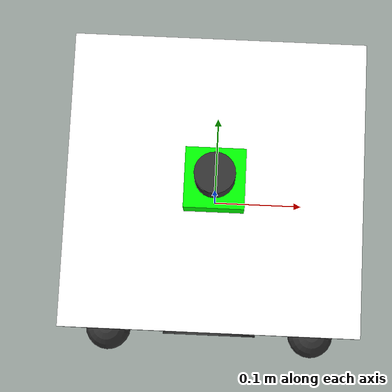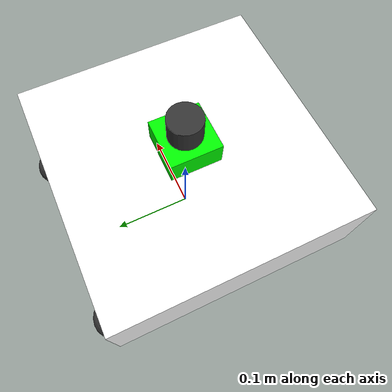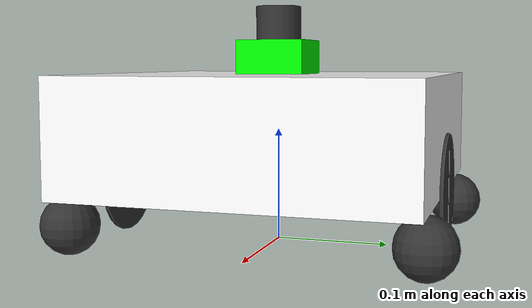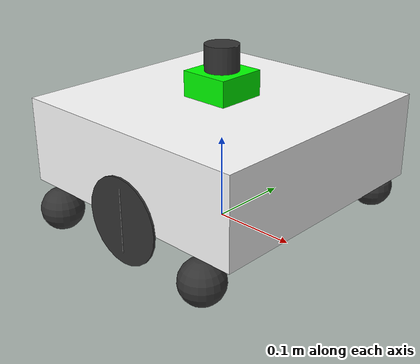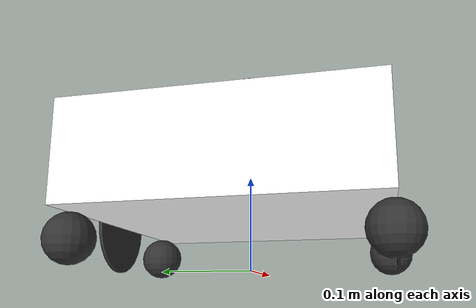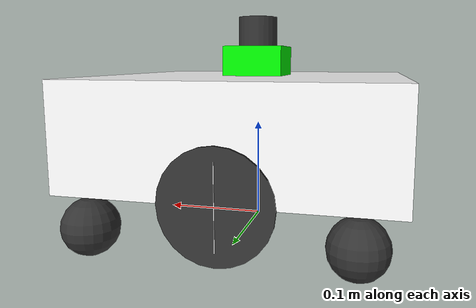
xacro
<?xml version="1.0"?>
<robot xmlns:xacro="http://www.ros.org/wiki/xacro" name="oav_V1">

    <xacro:arg name="prefix" default="rNESH"/>
    <xacro:property name="PREFIX" value="$(arg prefix)"/>

    <xacro:include filename="$(find oav_description)/urdf/components.urdf.xacro" />
    <xacro:include filename="$(find oav_description)/urdf/definations.urdf.xacro" />

    <xacro:base prefix="${PREFIX}"/>
    <xacro:neshLid_v1 prefix="${PREFIX}" parrent="base_link" x="0" y="0" z="${base_link_h/2}"/>

    <xacro:wheel prefix="${PREFIX}" location_prefix="right"/>
    <xacro:wheel prefix="${PREFIX}" location_prefix="left"/>

    <xacro:caster_wheel prefix="${PREFIX}" r_location_prefix="right" d_location_prefix="front"/>
    <xacro:caster_wheel prefix="${PREFIX}" r_location_prefix="left" d_location_prefix="front"/>

    <xacro:caster_wheel prefix="${PREFIX}" r_location_prefix="right" d_location_prefix="back"/>
    <xacro:caster_wheel prefix="${PREFIX}" r_location_prefix="left" d_location_prefix="back"/>

    <gazebo>
        <plugin name="gazebo_ros_control" filename="libgazebo_ros_control.so">
            <robotSimType>gazebo_ros_control/DefaultRobotHWSim</robotSimType>
            <robotNamespace></robotNamespace>
            <robotParam>robot_description</robotParam>
            <controlPeriod>0.002</controlPeriod>
        </plugin>
    </gazebo>

</robot>

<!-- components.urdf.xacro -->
<robot xmlns:xacro="http://www.ros.org/wiki/xacro" name="oav_components">

    <xacro:include filename="$(find oav_description)/urdf/neshLid.urdf.xacro" />

<xacro:macro name="base_footprint" params="prefix">
    <link name="${prefix}/base_footprint"/>
</xacro:macro>

<xacro:macro name="base" params="prefix">
    <xacro:base_footprint prefix="${prefix}"/>
    <link name="${prefix}/base_link">
        <visual>
            <origin xyz="0 0 0" rpy="0 0 0"/>
            <material name="white"/>
            <geometry>
                <box size="${base_link_l} ${base_link_w} ${base_link_h}"/>
            </geometry>
        </visual>

        <collision>
            <origin xyz="0 0 0" rpy="0 0 0"/>
            <geometry>
                <box size="${base_link_l} ${base_link_w} ${base_link_h}"/>
            </geometry>
        </collision>
        <internial>
            <physics type="ode">
                <gravity xyz="0 0 -9.8"/>
                <ode>
                <solver type="quick" dt="0.0001" iters="1000" sor="1.3"/>
                <constraints cfm="0.0" erp="0.1" contact_max_correcting_vel="10.0" contact_surface_layer="0.001"/>
                </ode>
            </physics>
        </internial>

        <xacro:box_inertial x="${base_link_l}" y="${base_link_w}" z="${base_link_h} " mass="${base_link_mass}">
            <origin xyz="0 0 0" rpy="0 0 0"/>
        </xacro:box_inertial>

    </link>

    <gazebo reference="${prefix}/base_link">
            <material>Gazebo/White</material>
    </gazebo>

    <joint name="${prefix}/base_joint" type="fixed">
        <parent link="${prefix}/base_footprint"/>
        <child link="${prefix}/base_link"/>
        <origin xyz="0 0 ${wheels_radius+base_link_h/2}" rpy="0 0 0"/>
    </joint>

</xacro:macro>

<xacro:macro name="wheel_links" params="prefix location_prefix">
    <link name="${prefix}/${location_prefix}_wheel_link">
        <visual>
            <origin xyz="0 0 0" rpy="${math_pi/2} 0 0"/>
            <material name="soft_black"/>
            <geometry>
                <cylinder radius="${wheels_radius}" length="${wheels_length}"/>
            </geometry>
        </visual>

        <collision>
            <origin xyz="0 0 0" rpy="${math_pi/2} 0 0"/>
            <geometry>
                <cylinder radius="${wheels_radius}" length="${wheels_length}"/>
            </geometry>
        </collision>

        <xacro:cylinder_inertial radius="${wheels_radius}" length="${wheels_length}" mass="${wheels_mass}">
            <origin xyz="0 0 0" rpy="${math_pi/2} 0 0"/>
        </xacro:cylinder_inertial>

    </link>

    <gazebo reference="${prefix}/${location_prefix}_wheel_link">
            <material>Gazebo/Black</material>
             <mu1 value="200.0"/>
             <mu2 value="200.0"/>
            <kp value="10000000.0" />
            <kd value="1.0" />
    </gazebo>

    <link name="${prefix}/${location_prefix}_wheel_ver_link">
        <visual>
            <origin xyz="0 0 0" rpy="0 0 ${math_pi/2}"/>
            <material name="white"/>
            <geometry>
                <box size="${wheels_length/8} ${wheels_length/4} ${wheels_radius*3/2}"/>
            </geometry>
        </visual>
    </link>

    <gazebo reference="${prefix}/${location_prefix}_wheel_ver_link">
            <material>Gazebo/White</material>
    </gazebo>

    <xacro:if value="${location_prefix == 'left'}">
        <joint name="${prefix}/${location_prefix}_wheel_ver_joint" type="fixed">
            <parent link="${prefix}/${location_prefix}_wheel_link"/>
            <child link="${prefix}/${location_prefix}_wheel_ver_link"/>
            <origin xyz="0 ${((wheels_length/2)+(wheels_length/16))} 0" rpy="0 0 0"/>
        </joint>
    </xacro:if>
    <xacro:unless value="${location_prefix == 'left'}">
        <joint name="${prefix}/${location_prefix}_wheel_ver_joint" type="fixed">
            <parent link="${prefix}/${location_prefix}_wheel_link"/>
            <child link="${prefix}/${location_prefix}_wheel_ver_link"/>
            <origin xyz="0 ${-((wheels_length/2)+(wheels_length/16))} 0" rpy="0 0 0"/>
        </joint>
    </xacro:unless>

</xacro:macro>

<xacro:macro name="wheel" params="prefix location_prefix">

    <xacro:wheel_links prefix="${prefix}" location_prefix="${location_prefix}" />

    <joint name="${prefix}/${location_prefix}_wheel_joint" type="continuous">
        <axis xyz="0 1 0" rpy="0 0 0" />
        <calibration rising="0.0"/>
        <dynamics damping="0.0" friction="0.0"/>
        <parent link="${prefix}/base_link"/>
        <child link="${prefix}/${location_prefix}_wheel_link"/>
        <xacro:if value="${location_prefix == 'left'}">
        <origin xyz="0 ${(base_link_w/2 + wheels_length/2)} ${-base_link_h/2}" rpy="0 0 0"/>
        </xacro:if>
        <xacro:unless value="${location_prefix == 'left'}">
        <origin xyz="0 ${(base_link_w/2 + wheels_length/2)*-1} ${-base_link_h/2}" rpy="0 0 0"/>
        </xacro:unless>
    </joint>

    <transmission name="${prefix}/${location_prefix}_trans">
        <type>transmission_interface/SimpleTransmission</type>
        <joint name="${prefix}/${location_prefix}_wheel_joint">
            <hardwareInterface>VelocityJointInterface</hardwareInterface>
        </joint>
        <actuator name="${prefix}/${location_prefix}Motor">
            <hardwareInterface>VelocityJointInterface</hardwareInterface>
            <mechanicalReduction>1</mechanicalReduction>
        </actuator>
    </transmission>
</xacro:macro>

<xacro:macro name="caster_wheel_links" params="prefix r_location_prefix d_location_prefix">
    <link name="${prefix}/${d_location_prefix}_${r_location_prefix}_caster_wheel_link">
        <visual>
            <origin xyz="0 0 0" rpy="0 0 0"/>
            <material name="soft_black"/>
            <geometry>
                <sphere radius="${caster_wheels_radius}"/>
                <!--cylinder radius="${caster_wheels_radius}" length="${caster_wheels_length}"/-->
            </geometry>
        </visual>

        <collision>
            <origin xyz="0 0 0" rpy="0 0 0"/>
            <geometry>
                <sphere radius="${caster_wheels_radius}"/>
                <!--cylinder radius="${caster_wheels_radius}" length="${caster_wheels_length}"/-->
            </geometry>
        </collision>

        <xacro:sphere_inertial radius="${caster_wheels_radius}" mass="${caster_wheels_mass}">
            <origin xyz="0 0 0" rpy="0 0 0"/>
        </xacro:sphere_inertial>

    </link>

    <gazebo reference="${prefix}/${d_location_prefix}_${r_location_prefix}_caster_wheel_link">
            <material>Gazebo/Black</material>
            <mu1 value="0.2"/>
            <mu2 value="0.1"/>
            <kp value="10000000.0" />
            <kd value="1.0" />
    </gazebo>

</xacro:macro>

<xacro:macro name="caster_wheel" params="prefix r_location_prefix d_location_prefix">

    <xacro:caster_wheel_links prefix="${PREFIX}" r_location_prefix="${r_location_prefix}" d_location_prefix="${d_location_prefix}"/>

    <xacro:if value="${d_location_prefix == 'front'}">
        <joint name="${prefix}/${d_location_prefix}_${r_location_prefix}_caster_wheel_joint" type="continuous">
           <joint_properties damping="0.0" friction="0.0"/>
            <axis xyz="1 1 1" rpy="0 0 0" />
            <parent link="${prefix}/base_link"/>
            <child link="${prefix}/${d_location_prefix}_${r_location_prefix}_caster_wheel_link"/>
            <xacro:if value="${r_location_prefix == 'left'}">
            <origin xyz="${(base_link_l/2 - caster_wheels_radius*3/2)} ${(base_link_w/2 - caster_wheels_length)} ${-(base_link_h/2 + caster_wheels_radius)}" rpy="0 0 0"/>
            </xacro:if>
            <xacro:unless value="${r_location_prefix == 'left'}">
            <origin xyz="${(base_link_l/2 - caster_wheels_radius*3/2)} ${(base_link_w/2 - caster_wheels_length)*-1} ${-(base_link_h/2 + caster_wheels_radius)}" rpy="0 0 0"/>
            </xacro:unless>
        </joint>
    </xacro:if>

    <xacro:unless value="${d_location_prefix == 'front'}">
        <joint name="${prefix}/${d_location_prefix}_${r_location_prefix}_caster_wheel_joint" type="continuous">
           <joint_properties damping="0.01" friction="1.0"/>
            <axis xyz="1 1 1" rpy="0 0 0" />
            <parent link="${prefix}/base_link"/>
            <child link="${prefix}/${d_location_prefix}_${r_location_prefix}_caster_wheel_link"/>
            <xacro:if value="${r_location_prefix == 'left'}">
            <origin xyz="${-(base_link_l/2 - caster_wheels_radius*3/2)} ${(base_link_w/2 - caster_wheels_length)} ${-(base_link_h/2 + caster_wheels_radius)}" rpy="0 0 0"/>
            </xacro:if>
            <xacro:unless value="${r_location_prefix == 'left'}">
            <origin xyz="${-(base_link_l/2 - caster_wheels_radius*3/2)} ${-(base_link_w/2 - caster_wheels_length)} ${-(base_link_h/2 + caster_wheels_radius)}" rpy="0 0 0"/>
            </xacro:unless>
        </joint>
    </xacro:unless>
</xacro:macro>

</robot>

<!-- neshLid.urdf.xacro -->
<robot xmlns:xacro="http://www.ros.org/wiki/xacro" name="oav_neshLid">
    <xacro:include filename="$(find oav_description)/urdf/inertial.urdf.xacro" />
    <xacro:include filename="$(find oav_description)/urdf/definations.urdf.xacro" />
    <xacro:include filename="$(find oav_description)/urdf/materials.urdf.xacro" />

<xacro:macro name="neshLid_v1" params="prefix parrent x y z">
    <link name="${prefix}/neshLid_v1_link">
        <visual>
            <material name="green" />
            <origin xyz="0 0 0" rpy="0 0 0"/>
            <geometry>
                <box size="${neshLid_v1_base_l} ${neshLid_v1_base_w} ${neshLid_v1_base_h}"/>
            </geometry>
        </visual>

        <collision>
            <origin xyz="0 0 0" rpy="0 0 0"/>
            <geometry>
                <box size="${neshLid_v1_base_l} ${neshLid_v1_base_w} ${neshLid_v1_base_h}"/>
            </geometry>
        </collision>

        <xacro:box_inertial x="${neshLid_v1_base_l}" y="${neshLid_v1_base_w}" z="${neshLid_v1_base_h} " mass="${neshLid_v1_base_mass}">
            <origin xyz="0 0 0" rpy="0 0 0"/>
        </xacro:box_inertial>
    </link>

    <link name="${prefix}/neshLid_v1_scanner_link">
        <visual>
            <material name="soft_black" />
            <origin xyz="0 0 0" rpy="0 0 0"/>
            <geometry>
                <cylinder radius="${neshLid_v1_scanner_radius}" length="${neshLid_v1_scanner_length}"/>
            </geometry>
        </visual>

        <collision>
            <origin xyz="0 0 0" rpy="0 0 0"/>
            <geometry>
                <cylinder radius="${neshLid_v1_scanner_radius}" length="${neshLid_v1_scanner_length}"/>
            </geometry>
        </collision>

        <xacro:cylinder_inertial radius="${neshLid_v1_scanner_radius}" length="${neshLid_v1_scanner_length}" mass="${neshLid_v1_base_mass}">
            <origin xyz="0 0 0" rpy="0 0 0"/>
        </xacro:cylinder_inertial>
    </link>

    <joint name="${prefix}/neshLid_v1_scanner_joint" type="fixed">
        <parent link="${prefix}/neshLid_v1_link"/>
        <child link="${prefix}/neshLid_v1_scanner_link"/>
        <origin xyz="0 0 ${(neshLid_v1_base_h/2)+(neshLid_v1_scanner_length/2)}" rpy="0 0 0"/>
    </joint>

    <joint name="${prefix}/neshLid_v1_joint" type="fixed">
        <parent link="${prefix}/${parrent}"/>
        <child link="${prefix}/neshLid_v1_link"/>
        <origin xyz="${x} ${y} ${z+(neshLid_v1_base_h/2)}" rpy="0 0 0"/>
    </joint>
    <xacro:neshLid_v1_gazebo prefix="${prefix}" link="neshLid_v1_scanner_link" ros_topic="scan"
        update_rate="15.0" min_angle="-2.357" max_angle="2.357" min_range="0.05" max_range="25" />
</xacro:macro>

<xacro:macro name="neshLid_v1_gazebo" params="prefix link ros_topic update_rate min_angle max_angle min_range max_range">
<gazebo reference="${prefix}/${link}">
      <material value="Gazebo/Green" />
      <sensor type="ray" name="${prefix}/neshLid_v1">
        <always_on>true</always_on>
        <update_rate>${update_rate}</update_rate>
        <pose>0 0 0 0 0 0</pose>
        <visualize>true</visualize>
        <ray>
          <scan>
            <horizontal>
              <samples>271</samples>
              <resolution>1</resolution>
              <min_angle>${min_angle}</min_angle>
              <max_angle>${max_angle}</max_angle>
            </horizontal>
          </scan>
          <range>
            <min>${min_range}</min>
            <max>${max_range}</max>
            <resolution>0.01</resolution>
          </range>
          <noise>
            <type>gaussian</type>
            <mean>0.0</mean>
            <stddev>0.005</stddev>
          </noise>
        </ray>
        <plugin name="gazebo_ros_${prefix}/neshLid_v1_controller" filename="libgazebo_ros_laser.so">
          <gaussianNoise>0.005</gaussianNoise>
          <alwaysOn>true</alwaysOn>
          <updateRate>${update_rate}</updateRate>
          <topicName>${prefix}/${ros_topic}</topicName>
          <frameName>${prefix}/${link}</frameName>
        </plugin>
      </sensor>
    </gazebo>

</xacro:macro>

</robot>

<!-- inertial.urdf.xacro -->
<robot xmlns:xacro="http://www.ros.org/wiki/xacro" name="inertia">
    <xacro:macro name="sphere_inertial" params="radius mass *origin">
        <inertial>
            <mass value="${mass}" />
            <xacro:insert_block name="origin" />
            <inertia ixx="${0.4 * mass * radius * radius}" ixy="0.0" ixz="0.0"
                iyy="${0.4 * mass * radius * radius}" iyz="0.0"
                izz="${0.4 * mass * radius * radius}" />
        </inertial>
    </xacro:macro>

    <xacro:macro name="cylinder_inertial" params="radius length mass *origin">
        <inertial>
        <mass value="${mass}" />
        <xacro:insert_block name="origin" />
        <inertia ixx="${0.0833333 * mass * (3 * radius * radius + length * length)}" ixy="0.0" ixz="0.0"
            iyy="${0.0833333 * mass * (3 * radius * radius + length * length)}" iyz="0.0"
            izz="${0.5 * mass * radius * radius}" />
        </inertial>
    </xacro:macro>

    <xacro:macro name="box_inertial" params="x y z mass *origin">
        <inertial>
        <mass value="${mass}" />
        <xacro:insert_block name="origin" />
        <inertia ixx="${0.0833333 * mass * (y*y + z*z)}" ixy="0.0" ixz="0.0"
            iyy="${0.0833333 * mass * (x*x + z*z)}" iyz="0.0"
            izz="${0.0833333 * mass * (x*x + y*y)}" />
        </inertial>
    </xacro:macro>
</robot>

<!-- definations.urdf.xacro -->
<robot xmlns:xacro="http://www.ros.org/wiki/xacro" name="oav_definations">

        <!-- MATH -->
        <xacro:property name="math_pi" value="3.1415" />

        <!-- BASE -->
        <xacro:property name="base_link_w" value="0.3"/>
        <xacro:property name="base_link_l" value="0.3"/>
        <xacro:property name="base_link_h" value="0.1"/>
        <xacro:property name="base_link_mass" value="50.0"/>

        <!-- TURTLE -->
        <xacro:property name="turtle_link_length" value="0.03125"/>
        <xacro:property name="turtle_link_radius" value="0.0625"/>

        <!-- WHEEL -->
        <xacro:property name="wheels_radius" value="0.05"/>
        <xacro:property name="wheels_length" value="0.0025"/>
        <xacro:property name="wheels_mass" value="2.5"/>

        <!-- CASTER WHEEL -->
        <xacro:property name="caster_wheels_radius" value="0.025"/>
        <xacro:property name="caster_wheels_length" value="0.0025"/>
        <xacro:property name="caster_wheels_mass" value="1.0"/>

        <xacro:property name="effort" value="0.0001"/>
        <xacro:property name="velocity" value="0.0"/>

        <xacro:property name="neshLid_v1_base_w" value="0.06"/>
        <xacro:property name="neshLid_v1_base_l" value="0.06"/>
        <xacro:property name="neshLid_v1_base_h" value="0.03"/>
        <xacro:property name="neshLid_v1_base_mass" value="0.01"/>

        <xacro:property name="neshLid_v1_scanner_length" value="0.03"/>
        <xacro:property name="neshLid_v1_scanner_radius" value="0.02"/>
        <xacro:property name="neshLid_v1_base_mass" value="0.005"/>

</robot>

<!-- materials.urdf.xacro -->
<robot xmlns:xacro="http://www.ros.org/wiki/xacro" name="oav_materials">

    <material name="white">
        <color rgba="1.0 1.0 1.0 1.0"/>
    </material>

    <material name="green">
        <color rgba="0.0 1.0 0.0 1.0"/>
    </material>

    <material name="soft_black">
        <color rgba="0.2 0.2 0.2 1.0"/>
    </material>

</robot>
